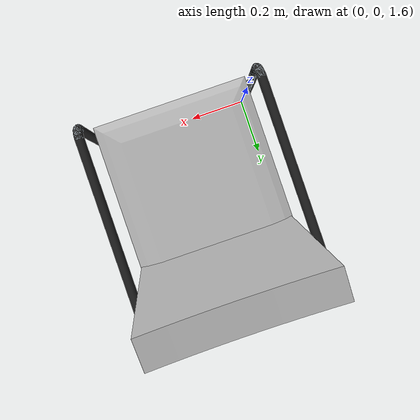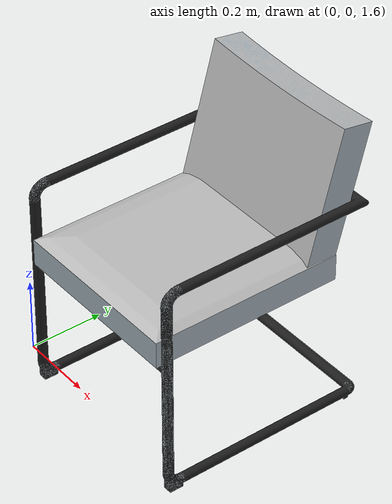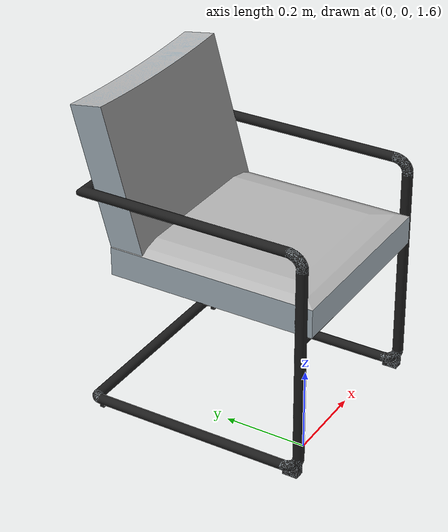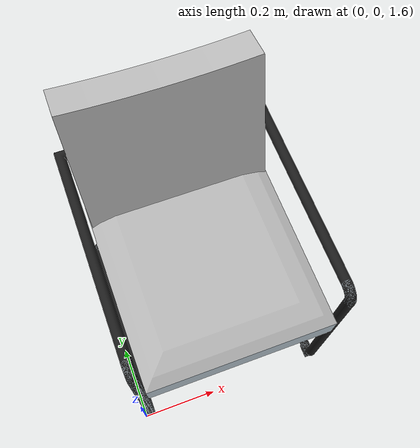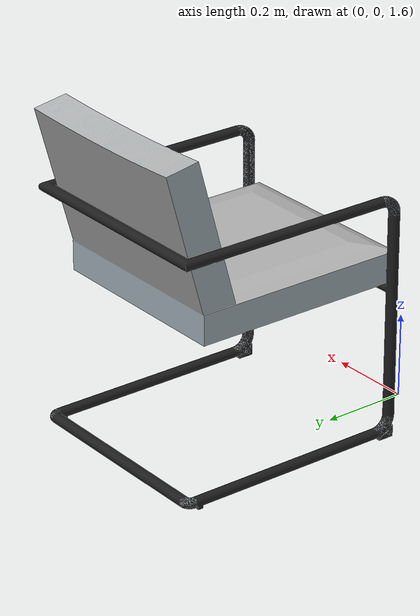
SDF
<?xml version="1.0" ?>

<sdf version="1.5">
	<world name="my_world">
		<!-- A global light source -->
		<include>
			<uri>model://sun</uri>
		</include>
		<include>
			<uri>model://my_chair</uri>
            <name>simple_chair</name>
            <pose>0 0 1.5 0 0 0</pose>
		</include>
	</world>
</sdf>

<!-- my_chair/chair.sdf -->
<sdf version="1.5">
  <model name="my_chair">
    <static>true</static>
    <link name="chair_link">
      <collision name="chair_collision">
        <geometry>
          <box>
            <size>0.5 0.51 0.55</size>
          </box>
        </geometry>
      </collision>
      <visual name="chair_mesh">
      <cast_shadows>true</cast_shadows>
        <geometry>
          <mesh>
            <uri>model://my_chair/meshes/model.dae</uri>
          </mesh>
        </geometry>
      </visual>
    </link>
  </model>
</sdf>
